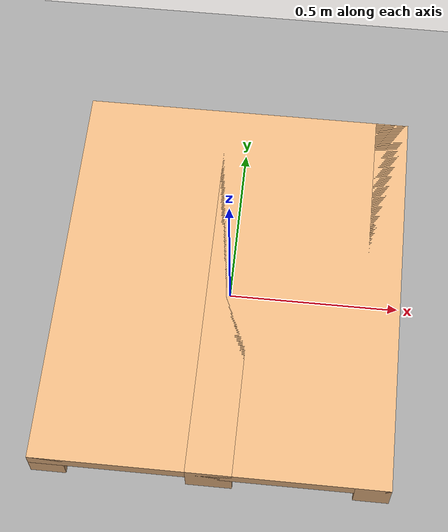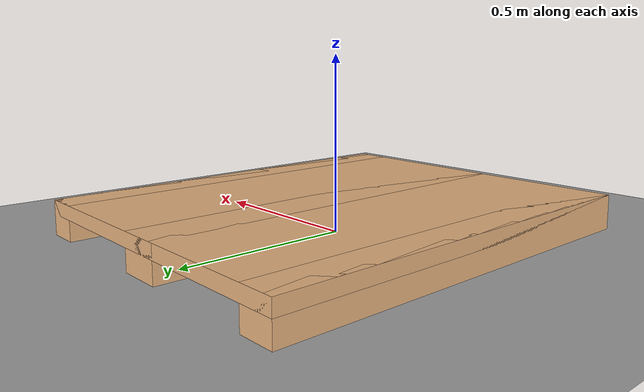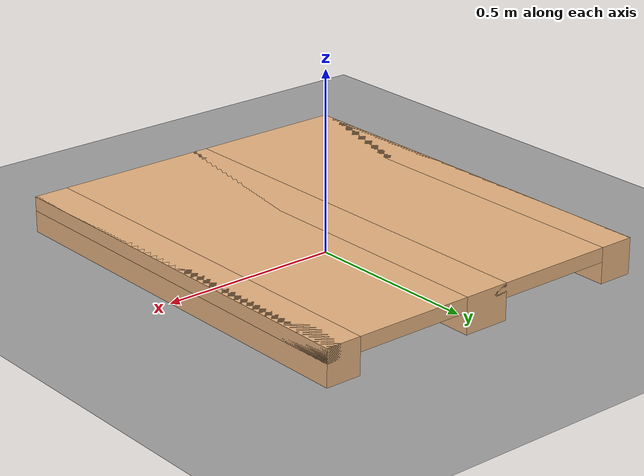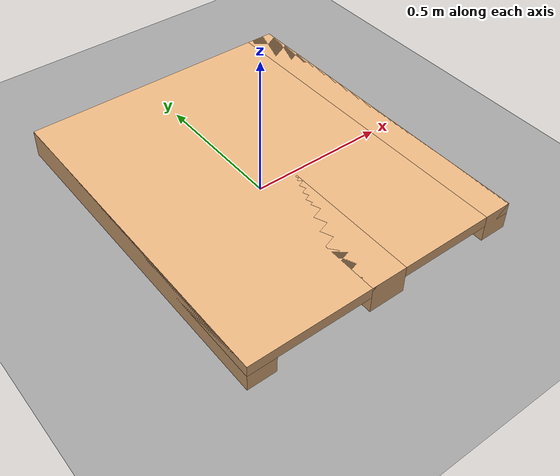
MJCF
<?xml version="1.0" ?>
<mujoco model="pallet">
  <!-- derive inertia from geometry -->
  <compiler angle="degree" inertiafromgeom="true"/>

  <!-- define textures and materials -->
  <asset>
    <!-- checkerboard texture -->
    <texture name="checker" type="2d" builtin="checker"
             rgb1="0.95 0.95 0.95" rgb2="0.3 0.3 0.3"
             width="512" height="512"/>
    <!-- floor uses checker -->
    <material name="floor_mat"
              texture="checker"
              texrepeat="10 10"
              specular="0.3"
              shininess="0.7"
              reflectance="0.2"/>
    <!-- bricks stay red -->
    <material name="brick_mat"
              rgba="0.9 0.4 0.4 1"
              specular="0.3"
              shininess="0.7"/>
    <!-- new light‑brown pallet -->
    <material name="pallet_mat"
              rgba="0.9 0.7 0.5 1"
              specular="0.3"
              shininess="0.7"/>
  </asset>

  <!-- physics options -->
  <option gravity="0 0 -9.81"/>

  <worldbody>
    <!-- renamed default camera -->
    <camera name="camera"
            pos="0 -12 8"
            euler="50 0 0"/>

    <!-- Add additional lights -->
    <light name="light1" pos="0 0 10" dir="0 0 -1" diffuse="0.8 0.8 0.8" specular="0.8 0.8 0.8"/>
    <light name="light2" pos="10 0 5" dir="-1 0 -0.5" diffuse="0.6 0.6 0.6" specular="0.6 0.6 0.6"/>
    <light name="light3" pos="-10 0 5" dir="1 0 -0.5" diffuse="0.6 0.6 0.6" specular="0.6 0.6 0.6"/>

    <!-- ground plane with checkerboard -->
    <geom name="floor"
          type="plane"
          pos="0 0 0"
          size="10 10 0.1"
          material="floor_mat"/>

    <body name="pallet"
          pos="0 0 0.08">
        <geom name="pallet_geom"
            type="box"
            size="0.5 0.6 0.02"
            density="1250"
            friction="2.0 2.0 0.002"
            material="pallet_mat"/>
        <body name="beam center" pos="0 0 -0.03">
          <geom name="beam_geom" type="box" size="0.065 0.6 0.05" density="1250" material="pallet_mat"/>
        </body>
        <body name="beam left" pos="-0.45 0 -0.03">
          <geom name="beam_left_geom" type="box" size="0.05 0.6 0.05" density="1250" material="pallet_mat"/>
        </body>
        <body name="beam right" pos="0.45 0 -0.03">
          <geom name="beam_right_geom" type="box" size="0.05 0.6 0.05" density="1250" material="pallet_mat"/>
        </body>

    </body>
  </worldbody>

</mujoco>
